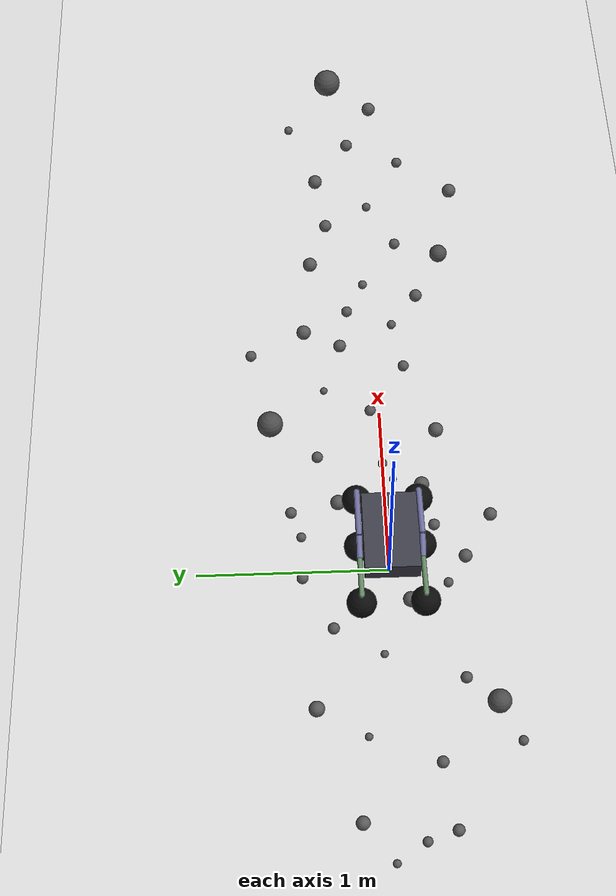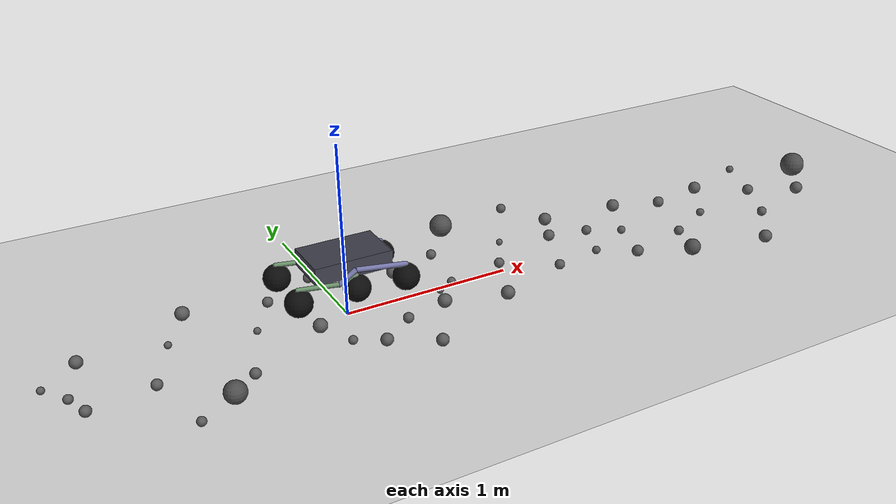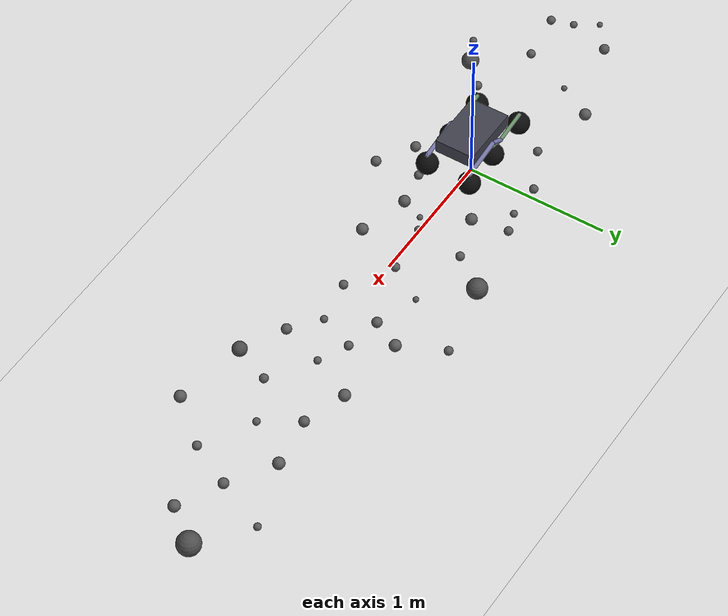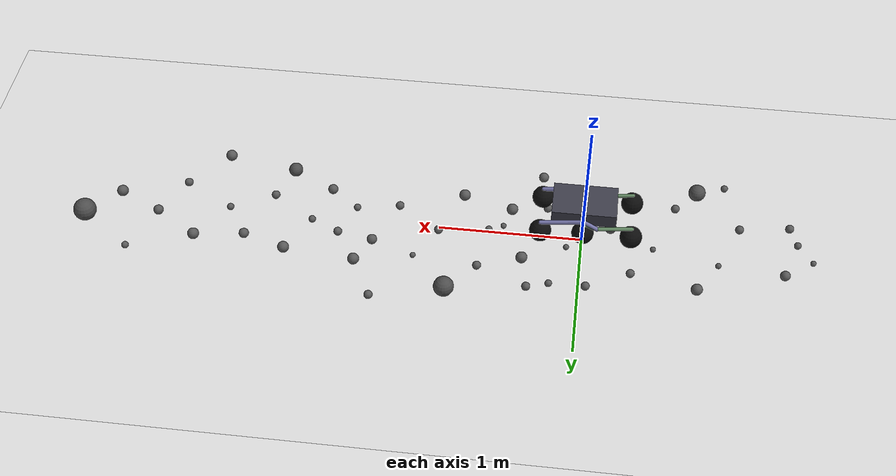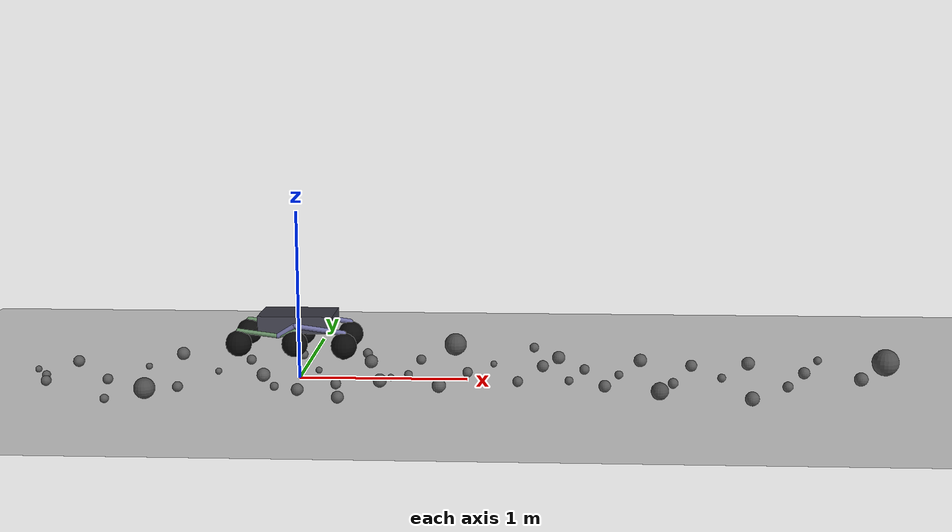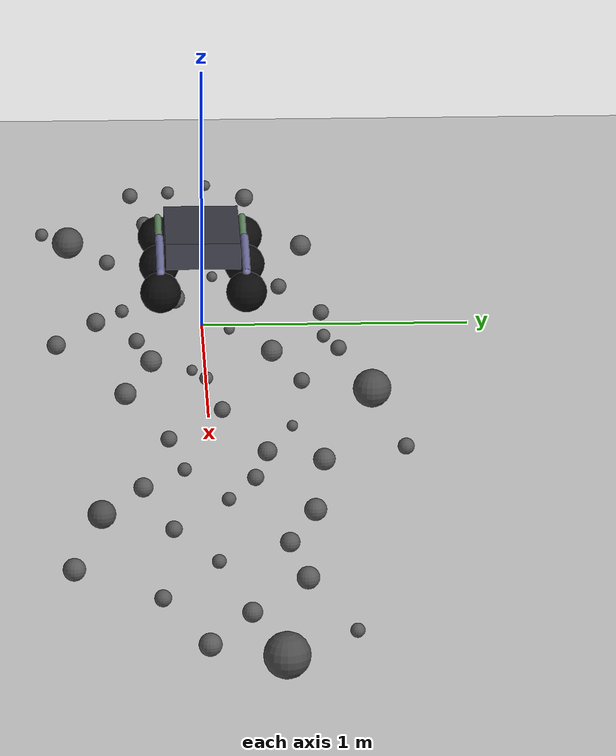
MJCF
<mujoco model="scene_rocks">
  <compiler angle="degree" inertiafromgeom="true"/>
  <option timestep="0.002" gravity="0 0 -9.81"/>

  <include file="rover.xml"/>

  <worldbody>
    <geom name="floor" type="plane" size="20 20 0.1" pos="0 0 0"
          contype="1" conaffinity="1"
          friction="1.2 0.01 0.0001"
          rgba="0.88 0.88 0.88 1"/>

    <geom type="sphere" pos="-1.10 -0.20 0.03" size="0.03" rgba="0.35 0.35 0.35 1"
          contype="1" conaffinity="1" friction="1.5 0.02 0.0001"/>
    <geom type="sphere" pos="-0.95  0.15 0.02" size="0.02" rgba="0.35 0.35 0.35 1"
          contype="1" conaffinity="1" friction="1.5 0.02 0.0001"/>
    <geom type="sphere" pos="-0.80  0.40 0.04" size="0.04" rgba="0.35 0.35 0.35 1"
          contype="1" conaffinity="1" friction="1.5 0.02 0.0001"/>
    <geom type="sphere" pos="-0.65 -0.35 0.03" size="0.03" rgba="0.35 0.35 0.35 1"
          contype="1" conaffinity="1" friction="1.5 0.02 0.0001"/>
    <geom type="sphere" pos="-0.50  0.05 0.02" size="0.02" rgba="0.35 0.35 0.35 1"
          contype="1" conaffinity="1" friction="1.5 0.02 0.0001"/>
    <geom type="sphere" pos="-0.35  0.30 0.03" size="0.03" rgba="0.35 0.35 0.35 1"
          contype="1" conaffinity="1" friction="1.5 0.02 0.0001"/>
    <geom type="sphere" pos="-0.20 -0.10 0.04" size="0.04" rgba="0.35 0.35 0.35 1"
          contype="1" conaffinity="1" friction="1.5 0.02 0.0001"/>
    <geom type="sphere" pos="-0.05  0.45 0.03" size="0.03" rgba="0.35 0.35 0.35 1"
          contype="1" conaffinity="1" friction="1.5 0.02 0.0001"/>
    <geom type="sphere" pos=" 0.10  0.10 0.02" size="0.02" rgba="0.35 0.35 0.35 1"
          contype="1" conaffinity="1" friction="1.5 0.02 0.0001"/>
    <geom type="sphere" pos=" 0.25 -0.25 0.03" size="0.03" rgba="0.35 0.35 0.35 1"
          contype="1" conaffinity="1" friction="1.5 0.02 0.0001"/>
    <geom type="sphere" pos=" 0.40  0.25 0.04" size="0.04" rgba="0.35 0.35 0.35 1"
          contype="1" conaffinity="1" friction="1.5 0.02 0.0001"/>
    <geom type="sphere" pos=" 0.55 -0.05 0.02" size="0.02" rgba="0.35 0.35 0.35 1"
          contype="1" conaffinity="1" friction="1.5 0.02 0.0001"/>
    <geom type="sphere" pos=" 0.70  0.35 0.03" size="0.03" rgba="0.35 0.35 0.35 1"
          contype="1" conaffinity="1" friction="1.5 0.02 0.0001"/>
    <geom type="sphere" pos=" 0.85 -0.30 0.04" size="0.04" rgba="0.35 0.35 0.35 1"
          contype="1" conaffinity="1" friction="1.5 0.02 0.0001"/>
    <geom type="sphere" pos=" 1.00  0.05 0.03" size="0.03" rgba="0.35 0.35 0.35 1"
          contype="1" conaffinity="1" friction="1.5 0.02 0.0001"/>
    <geom type="sphere" pos=" 1.15  0.30 0.02" size="0.02" rgba="0.35 0.35 0.35 1"
          contype="1" conaffinity="1" friction="1.5 0.02 0.0001"/>
    <geom type="sphere" pos=" 1.30 -0.15 0.03" size="0.03" rgba="0.35 0.35 0.35 1"
          contype="1" conaffinity="1" friction="1.5 0.02 0.0001"/>
    <geom type="sphere" pos="-1.50 -0.10 0.025" size="0.025" rgba="0.35 0.35 0.35 1"
          contype="1" conaffinity="1" friction="1.5 0.02 0.0001"/>
    <geom type="sphere" pos="-1.40  0.20 0.035" size="0.035" rgba="0.35 0.35 0.35 1"
          contype="1" conaffinity="1" friction="1.5 0.02 0.0001"/>
    <geom type="sphere" pos="-1.60  0.05 0.02" size="0.02" rgba="0.35 0.35 0.35 1"
          contype="1" conaffinity="1" friction="1.5 0.02 0.0001"/>
    <geom type="sphere" pos="-1.45 -0.25 0.03" size="0.03" rgba="0.35 0.35 0.35 1"
          contype="1" conaffinity="1" friction="1.5 0.02 0.0001"/>
    <geom type="sphere" pos="-0.10 -0.30 0.025" size="0.025" rgba="0.35 0.35 0.35 1"
          contype="1" conaffinity="1" friction="1.5 0.02 0.0001"/>
    <geom type="sphere" pos="0.05 -0.40 0.035" size="0.035" rgba="0.35 0.35 0.35 1"
          contype="1" conaffinity="1" friction="1.5 0.02 0.0001"/>
    <geom type="sphere" pos="0.20  0.45 0.025" size="0.025" rgba="0.35 0.35 0.35 1"
          contype="1" conaffinity="1" friction="1.5 0.02 0.0001"/>
    <geom type="sphere" pos="0.35  0.50 0.03" size="0.03" rgba="0.35 0.35 0.35 1"
          contype="1" conaffinity="1" friction="1.5 0.02 0.0001"/>
    <geom type="sphere" pos="0.50 -0.20 0.04" size="0.04" rgba="0.35 0.35 0.35 1"
          contype="1" conaffinity="1" friction="1.5 0.02 0.0001"/>
    <geom type="sphere" pos="0.65  0.00 0.025" size="0.025" rgba="0.35 0.35 0.35 1"
          contype="1" conaffinity="1" friction="1.5 0.02 0.0001"/>
    <geom type="sphere" pos="1.45  0.20 0.035" size="0.035" rgba="0.35 0.35 0.35 1"
          contype="1" conaffinity="1" friction="1.5 0.02 0.0001"/>
    <geom type="sphere" pos="1.60 -0.10 0.025" size="0.025" rgba="0.35 0.35 0.35 1"
          contype="1" conaffinity="1" friction="1.5 0.02 0.0001"/>
    <geom type="sphere" pos="1.55  0.40 0.04" size="0.04" rgba="0.35 0.35 0.35 1"
          contype="1" conaffinity="1" friction="1.5 0.02 0.0001"/>
    <geom type="sphere" pos="1.70  0.15 0.03" size="0.03" rgba="0.35 0.35 0.35 1"
          contype="1" conaffinity="1" friction="1.5 0.02 0.0001"/>
    <geom type="sphere" pos="1.80 -0.25 0.035" size="0.035" rgba="0.35 0.35 0.35 1"
          contype="1" conaffinity="1" friction="1.5 0.02 0.0001"/>
    <geom type="sphere" pos="1.90  0.05 0.025" size="0.025" rgba="0.35 0.35 0.35 1"
          contype="1" conaffinity="1" friction="1.5 0.02 0.0001"/>
    <geom type="sphere" pos="2.05  0.35 0.04" size="0.04" rgba="0.35 0.35 0.35 1"
          contype="1" conaffinity="1" friction="1.5 0.02 0.0001"/>
    <geom type="sphere" pos="2.20 -0.15 0.03" size="0.03" rgba="0.35 0.35 0.35 1"
          contype="1" conaffinity="1" friction="1.5 0.02 0.0001"/>
    <geom type="sphere" pos="2.35  0.25 0.035" size="0.035" rgba="0.35 0.35 0.35 1"
          contype="1" conaffinity="1" friction="1.5 0.02 0.0001"/>
    <geom type="sphere" pos="2.50  0.00 0.025" size="0.025" rgba="0.35 0.35 0.35 1"
          contype="1" conaffinity="1" friction="1.5 0.02 0.0001"/>
    <geom type="sphere" pos="2.70  0.30 0.04" size="0.04" rgba="0.35 0.35 0.35 1"
          contype="1" conaffinity="1" friction="1.5 0.02 0.0001"/>
    <geom type="sphere" pos="2.85 -0.20 0.03" size="0.03" rgba="0.35 0.35 0.35 1"
          contype="1" conaffinity="1" friction="1.5 0.02 0.0001"/>
    <geom type="sphere" pos="3.00  0.10 0.035" size="0.035" rgba="0.35 0.35 0.35 1"
          contype="1" conaffinity="1" friction="1.5 0.02 0.0001"/>
    <geom type="sphere" pos="3.15  0.45 0.025" size="0.025" rgba="0.35 0.35 0.35 1"
          contype="1" conaffinity="1" friction="1.5 0.02 0.0001"/>
    <geom type="sphere" pos="3.30 -0.05 0.04" size="0.04" rgba="0.35 0.35 0.35 1"
          contype="1" conaffinity="1" friction="1.5 0.02 0.0001"/>
    <geom type="sphere" pos="-0.80 -0.50 0.06" size="0.06" rgba="0.3 0.3 0.3 1"
          contype="1" conaffinity="1" friction="1.8 0.03 0.0001"/>
    <geom type="sphere" pos="0.90  0.60 0.07" size="0.07" rgba="0.3 0.3 0.3 1"
          contype="1" conaffinity="1" friction="1.8 0.03 0.0001"/>
    <geom type="sphere" pos="2.10 -0.40 0.05" size="0.05" rgba="0.3 0.3 0.3 1"
          contype="1" conaffinity="1" friction="1.8 0.03 0.0001"/>
    <geom type="sphere" pos="3.50  0.20 0.08" size="0.08" rgba="0.3 0.3 0.3 1"
          contype="1" conaffinity="1" friction="1.8 0.03 0.0001"/>
    <geom type="sphere" pos="-1.00 -0.60 0.025" size="0.025" rgba="0.35 0.35 0.35 1"
          contype="1" conaffinity="1" friction="1.5 0.02 0.0001"/>
    <geom type="sphere" pos="0.30 -0.55 0.035" size="0.035" rgba="0.35 0.35 0.35 1"
          contype="1" conaffinity="1" friction="1.5 0.02 0.0001"/>
    <geom type="sphere" pos="1.40  0.70 0.03" size="0.03" rgba="0.35 0.35 0.35 1"
          contype="1" conaffinity="1" friction="1.5 0.02 0.0001"/>
    <geom type="sphere" pos="2.60 -0.50 0.04" size="0.04" rgba="0.35 0.35 0.35 1"
          contype="1" conaffinity="1" friction="1.5 0.02 0.0001"/>

    <light pos="0 0 3" dir="0 0 -1" diffuse="1 1 1"/>
    <camera name="main" pos="2.2 -2.2 1.2" xyaxes="0.7 0.7 0  -0.2 0.2 0.96"/>
  </worldbody>
</mujoco>

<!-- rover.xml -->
<mujoco model="rocker_bogie">
  <compiler angle="degree" inertiafromgeom="true" autolimits="true"/>
  <option timestep="0.002" gravity="0 0 -9.81" solver="Newton" iterations="120"/>

  <default>
    <geom condim="4" friction="1.3 0.01 0.0001" solref="0.004 1" solimp="0.95 0.99 0.001"
          contype="0" conaffinity="0"/>
    <joint damping="2" armature="0.02" limited="false"/>
  </default>

  <asset>
    <material name="mat_chassis" rgba="0.25 0.25 0.30 1"/>
    <material name="mat_rocker"  rgba="0.45 0.45 0.65 1"/>
    <material name="mat_bogie"   rgba="0.40 0.55 0.40 1"/>
    <material name="mat_wheel"   rgba="0.05 0.05 0.05 1"/>
    <material name="mat_skid"    rgba="0.20 0.20 0.20 0.6"/>
  </asset>

  <worldbody>
    <body name="chassis" pos="0 0 0.35">
      <joint name="slide_x" type="slide" axis="1 0 0" damping="1.0"/>
      <joint name="slide_y" type="slide" axis="0 1 0" damping="1.0"/>
      <joint name="slide_z" type="slide" axis="0 0 1" damping="2.0"/>

      <joint name="roll"  type="hinge" axis="1 0 0" damping="4.0" limited="true" range="-20 20"/>
      <joint name="pitch" type="hinge" axis="0 1 0" damping="4.0" limited="true" range="-20 20"/>
      <joint name="yaw"   type="hinge" axis="0 0 1" damping="1.0"/>

      <inertial pos="0 0 -0.03" mass="8.0" diaginertia="0.25 0.55 0.55"/>

      <!-- кузов визуальный, НЕ контактит -->
      <geom type="box" size="0.22 0.14 0.05" material="mat_chassis"
            contype="0" conaffinity="0"/>

      <!-- ========== LEFT ========== -->
      <body name="rocker_L" pos="0 0.16 0">
        <joint name="rocker_L_j" type="hinge" axis="0 1 0" damping="8" limited="true" range="-35 35"/>

        <geom type="capsule" fromto="0 0 0   0.288 0 -0.04" size="0.015" density="500"
              material="mat_rocker" contype="0" conaffinity="0"/>
        <geom type="capsule" fromto="0 0 0   -0.096 0 -0.06" size="0.015" density="500"
              material="mat_rocker" contype="0" conaffinity="0"/>

        <body name="wheel_front_L" pos="0.288 0 -0.116">
          <joint name="wheel_front_L_j" type="hinge" axis="0 1 0" damping="0.4" armature="0.01"/>
          <geom type="sphere" size="0.076" material="mat_wheel"
                contype="1" conaffinity="1"/>
        </body>

        <body name="bogie_L" pos="-0.096 0 -0.06">
          <joint name="bogie_L_j" type="hinge" axis="0 1 0" damping="10" limited="true" range="-70 70"/>

          <geom type="capsule" fromto="0 0 0   0.096 0 0.03" size="0.013" density="550"
                material="mat_bogie" contype="0" conaffinity="0"/>
          <geom type="capsule" fromto="0 0 0   -0.232 0 0.03" size="0.013" density="550"
                material="mat_bogie" contype="0" conaffinity="0"/>

          <body name="wheel_mid_L" pos="0.096 0 -0.046">
            <joint name="wheel_mid_L_j" type="hinge" axis="0 1 0" damping="0.4" armature="0.01"/>
            <geom type="sphere" size="0.076" material="mat_wheel"
                  contype="1" conaffinity="1"/>
          </body>

          <body name="wheel_rear_L" pos="-0.232 0 -0.046">
            <joint name="wheel_rear_L_j" type="hinge" axis="0 1 0" damping="0.4" armature="0.01"/>
            <geom type="sphere" size="0.076" material="mat_wheel"
                  contype="1" conaffinity="1"/>
          </body>
        </body>
      </body>

      <!-- ========== RIGHT ========== -->
      <body name="rocker_R" pos="0 -0.16 0">
        <joint name="rocker_R_j" type="hinge" axis="0 1 0" damping="8" limited="true" range="-35 35"/>

        <geom type="capsule" fromto="0 0 0   0.288 0 -0.04" size="0.015" density="500"
              material="mat_rocker" contype="0" conaffinity="0"/>
        <geom type="capsule" fromto="0 0 0   -0.096 0 -0.06" size="0.015" density="500"
              material="mat_rocker" contype="0" conaffinity="0"/>

        <body name="wheel_front_R" pos="0.288 0 -0.116">
          <joint name="wheel_front_R_j" type="hinge" axis="0 1 0" damping="0.4" armature="0.01"/>
          <geom type="sphere" size="0.076" material="mat_wheel"
                contype="1" conaffinity="1"/>
        </body>

        <body name="bogie_R" pos="-0.096 0 -0.06">
          <joint name="bogie_R_j" type="hinge" axis="0 1 0" damping="10" limited="true" range="-70 70"/>

          <geom type="capsule" fromto="0 0 0   0.096 0 0.03" size="0.013" density="550"
                material="mat_bogie" contype="0" conaffinity="0"/>
          <geom type="capsule" fromto="0 0 0   -0.232 0 0.03" size="0.013" density="550"
                material="mat_bogie" contype="0" conaffinity="0"/>

          <body name="wheel_mid_R" pos="0.096 0 -0.046">
            <joint name="wheel_mid_R_j" type="hinge" axis="0 1 0" damping="0.4" armature="0.01"/>
            <geom type="sphere" size="0.076" material="mat_wheel"
                  contype="1" conaffinity="1"/>
          </body>

          <body name="wheel_rear_R" pos="-0.232 0 -0.046">
            <joint name="wheel_rear_R_j" type="hinge" axis="0 1 0" damping="0.4" armature="0.01"/>
            <geom type="sphere" size="0.076" material="mat_wheel"
                  contype="1" conaffinity="1"/>
          </body>
        </body>
      </body>

    </body>
  </worldbody>

  <actuator>
    <position name="diff_pitch" joint="pitch" kp="900" kv="80" forcerange="-250 250"/>
    <position name="diff_roll"  joint="roll"  kp="900" kv="80" forcerange="-250 250"/>

    <motor joint="wheel_front_L_j" gear="40"/>
    <motor joint="wheel_mid_L_j"   gear="40"/>
    <motor joint="wheel_rear_L_j"  gear="40"/>
    <motor joint="wheel_front_R_j" gear="40"/>
    <motor joint="wheel_mid_R_j"   gear="40"/>
    <motor joint="wheel_rear_R_j"  gear="40"/>
  </actuator>
</mujoco>
